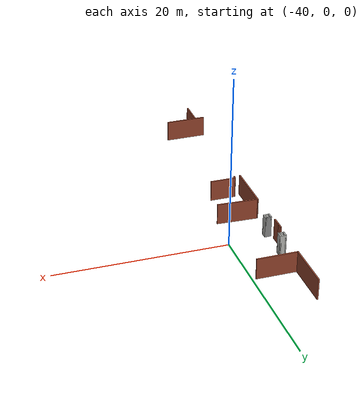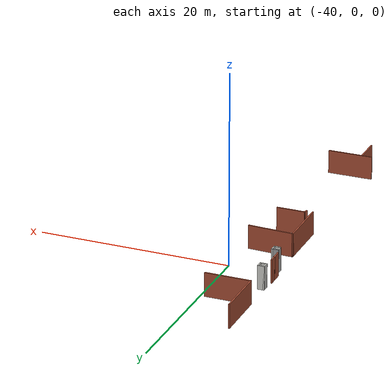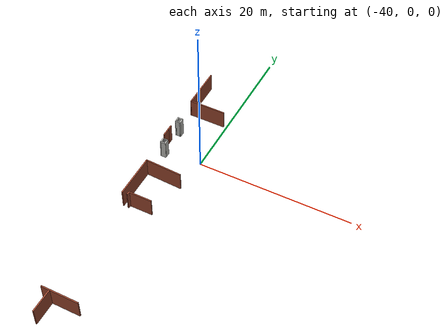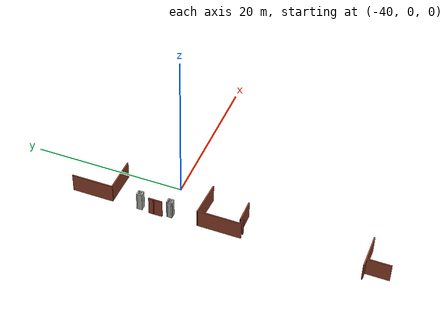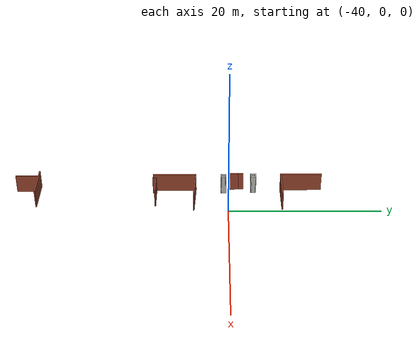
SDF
<sdf version="1.7">
 <model name="Planta1_TD">
  <pose>-6.73335 -7.75071 0 0 -0 0</pose>
  <link name="Wall_134">
   <collision name="Wall_134_Collision">
    <geometry><box><size>0.75 0.15 2.5</size></box></geometry>
    <pose>0 0 1.25 0 -0 0</pose>
   </collision>
   <visual name="Wall_134_Visual">
    <pose>0 0 1.25 0 -0 0</pose>
    <geometry><box><size>0.75 0.15 2.5</size></box></geometry>
    <material>
     <script><uri>file://media/materials/scripts/gazebo.material</uri><name>Gazebo/Bricks</name></script>
     <ambient>1 1 1 1</ambient>
    </material>
    <meta><layer>0</layer></meta>
   </visual>
   <pose>-38.4792 9.44018 0 0 -0 -1.5708</pose>
  </link>
  <link name="Wall_135">
   <collision name="Wall_135_Collision">
    <geometry><box><size>1.17617 0.15 2.5</size></box></geometry>
    <pose>0 0 1.25 0 -0 0</pose>
   </collision>
   <visual name="Wall_135_Visual">
    <pose>0 0 1.25 0 -0 0</pose>
    <geometry><box><size>1.17617 0.15 2.5</size></box></geometry>
    <material>
     <script><uri>file://media/materials/scripts/gazebo.material</uri><name>Gazebo/Bricks</name></script>
     <ambient>1 1 1 1</ambient>
    </material>
    <meta><layer>0</layer></meta>
   </visual>
   <pose>-38.4748 8.62711 0 0 -0 -1.56228</pose>
  </link>
  <link name="Wall_237">
   <collision name="Wall_237_Collision">
    <geometry><box><size>0.75 0.15 2.5</size></box></geometry>
    <pose>0 0 1.25 0 -0 0</pose>
   </collision>
   <visual name="Wall_237_Visual">
    <pose>0 0 1.25 0 -0 0</pose>
    <geometry><box><size>0.75 0.15 2.5</size></box></geometry>
    <material>
     <script><uri>file://media/materials/scripts/gazebo.material</uri><name>Gazebo/CeilingTiled</name></script>
     <ambient>1 1 1 1</ambient>
    </material>
    <meta><layer>0</layer></meta>
   </visual>
   <pose>-38.0519 11.4364 0 0 -0 3.14159</pose>
  </link>
  <link name="Wall_238">
   <collision name="Wall_238_Collision">
    <geometry><box><size>0.75 0.15 2.5</size></box></geometry>
    <pose>0 0 1.25 0 -0 0</pose>
   </collision>
   <visual name="Wall_238_Visual">
    <pose>0 0 1.25 0 -0 0</pose>
    <geometry><box><size>0.75 0.15 2.5</size></box></geometry>
    <material>
     <script><uri>file://media/materials/scripts/gazebo.material</uri><name>Gazebo/CeilingTiled</name></script>
     <ambient>1 1 1 1</ambient>
    </material>
    <meta><layer>0</layer></meta>
   </visual>
   <pose>-38.3519 11.1364 0 0 -0 -1.5708</pose>
  </link>
  <link name="Wall_239">
   <collision name="Wall_239_Collision">
    <geometry><box><size>0.75 0.15 2.5</size></box></geometry>
    <pose>0 0 1.25 0 -0 0</pose>
   </collision>
   <visual name="Wall_239_Visual">
    <pose>0 0 1.25 0 -0 0</pose>
    <geometry><box><size>0.75 0.15 2.5</size></box></geometry>
    <material>
     <script><uri>file://media/materials/scripts/gazebo.material</uri><name>Gazebo/CeilingTiled</name></script>
     <ambient>1 1 1 1</ambient>
    </material>
    <meta><layer>0</layer></meta>
   </visual>
   <pose>-38.0519 10.8364 0 0 -0 0</pose>
  </link>
  <link name="Wall_24">
   <collision name="Wall_24_Collision">
    <geometry><box><size>4.75 0.15 2.5</size></box></geometry>
    <pose>0 0 1.25 0 -0 0</pose>
   </collision>
   <visual name="Wall_24_Visual">
    <pose>0 0 1.25 0 -0 0</pose>
    <geometry><box><size>4.75 0.15 2.5</size></box></geometry>
    <material>
     <script><uri>file://media/materials/scripts/gazebo.material</uri><name>Gazebo/Bricks</name></script>
     <ambient>1 1 1 1</ambient>
    </material>
    <meta><layer>0</layer></meta>
   </visual>
   <pose>-36.7327 -17.4494 0 0 -0 3.14159</pose>
  </link>
  <link name="Wall_240">
   <collision name="Wall_240_Collision">
    <geometry><box><size>0.75 0.15 2.5</size></box></geometry>
    <pose>0 0 1.25 0 -0 0</pose>
   </collision>
   <visual name="Wall_240_Visual">
    <pose>0 0 1.25 0 -0 0</pose>
    <geometry><box><size>0.75 0.15 2.5</size></box></geometry>
    <material>
     <script><uri>file://media/materials/scripts/gazebo.material</uri><name>Gazebo/CeilingTiled</name></script>
     <ambient>1 1 1 1</ambient>
    </material>
    <meta><layer>0</layer></meta>
   </visual>
   <pose>-37.7519 11.1364 0 0 -0 1.5708</pose>
  </link>
  <link name="Wall_242">
   <collision name="Wall_242_Collision">
    <geometry><box><size>0.75 0.15 2.5</size></box></geometry>
    <pose>0 0 1.25 0 -0 0</pose>
   </collision>
   <visual name="Wall_242_Visual">
    <pose>0 0 1.25 0 -0 0</pose>
    <geometry><box><size>0.75 0.15 2.5</size></box></geometry>
    <material>
     <script><uri>file://media/materials/scripts/gazebo.material</uri><name>Gazebo/Grey</name></script>
     <ambient>1 1 1 1</ambient>
    </material>
    <meta><layer>0</layer></meta>
   </visual>
   <pose>-37.9409 7.46814 0 0 -0 0</pose>
  </link>
  <link name="Wall_243">
   <collision name="Wall_243_Collision">
    <geometry><box><size>0.75 0.15 2.5</size></box></geometry>
    <pose>0 0 1.25 0 -0 0</pose>
   </collision>
   <visual name="Wall_243_Visual">
    <pose>0 0 1.25 0 -0 0</pose>
    <geometry><box><size>0.75 0.15 2.5</size></box></geometry>
    <material>
     <script><uri>file://media/materials/scripts/gazebo.material</uri><name>Gazebo/CeilingTiled</name></script>
     <ambient>1 1 1 1</ambient>
    </material>
    <meta><layer>0</layer></meta>
   </visual>
   <pose>-37.6409 7.16814 0 0 -0 -1.5708</pose>
  </link>
  <link name="Wall_244">
   <collision name="Wall_244_Collision">
    <geometry><box><size>0.75 0.15 2.5</size></box></geometry>
    <pose>0 0 1.25 0 -0 0</pose>
   </collision>
   <visual name="Wall_244_Visual">
    <pose>0 0 1.25 0 -0 0</pose>
    <geometry><box><size>0.75 0.15 2.5</size></box></geometry>
    <material>
     <script><uri>file://media/materials/scripts/gazebo.material</uri><name>Gazebo/CeilingTiled</name></script>
     <ambient>1 1 1 1</ambient>
    </material>
    <meta><layer>0</layer></meta>
   </visual>
   <pose>-37.9409 6.86814 0 0 -0 3.14159</pose>
  </link>
  <link name="Wall_245">
   <collision name="Wall_245_Collision">
    <geometry><box><size>0.75 0.15 2.5</size></box></geometry>
    <pose>0 0 1.25 0 -0 0</pose>
   </collision>
   <visual name="Wall_245_Visual">
    <pose>0 0 1.25 0 -0 0</pose>
    <geometry><box><size>0.75 0.15 2.5</size></box></geometry>
    <material>
     <script><uri>file://media/materials/scripts/gazebo.material</uri><name>Gazebo/CeilingTiled</name></script>
     <ambient>1 1 1 1</ambient>
    </material>
    <meta><layer>0</layer></meta>
   </visual>
   <pose>-38.2409 7.16814 0 0 -0 1.5708</pose>
  </link>
  <link name="Wall_4">
   <collision name="Wall_4_Collision">
    <geometry><box><size>0.5 0.15 2.5</size></box></geometry>
    <pose>0 0 1.25 0 -0 0</pose>
   </collision>
   <visual name="Wall_4_Visual">
    <pose>0 0 1.25 0 -0 0</pose>
    <geometry><box><size>0.5 0.15 2.5</size></box></geometry>
    <material>
     <script><uri>file://media/materials/scripts/gazebo.material</uri><name>Gazebo/Bricks</name></script>
     <ambient>1 1 1 1</ambient>
    </material>
    <meta><layer>0</layer></meta>
   </visual>
   <pose>-37.5173 -1.98699 0 0 -0 1.309</pose>
  </link>
  <link name="Wall_42">
   <collision name="Wall_42_Collision">
    <geometry><box><size>3 0.15 2.5</size></box></geometry>
    <pose>0 0 1.25 0 -0 0</pose>
   </collision>
   <visual name="Wall_42_Visual">
    <pose>0 0 1.25 0 -0 0</pose>
    <geometry><box><size>3 0.15 2.5</size></box></geometry>
    <material>
     <script><uri>file://media/materials/scripts/gazebo.material</uri><name>Gazebo/Bricks</name></script>
     <ambient>1 1 1 1</ambient>
    </material>
    <meta><layer>0</layer></meta>
   </visual>
   <pose>-37.9984 -19.0014 0 0 -0 1.5708</pose>
  </link>
  <link name="Wall_5">
   <collision name="Wall_5_Collision">
    <geometry><box><size>3 0.15 2.5</size></box></geometry>
    <pose>0 0 1.25 0 -0 0</pose>
   </collision>
   <visual name="Wall_5_Visual">
    <pose>0 0 1.25 0 -0 0</pose>
    <geometry><box><size>3 0.15 2.5</size></box></geometry>
    <material>
     <script><uri>file://media/materials/scripts/gazebo.material</uri><name>Gazebo/Bricks</name></script>
     <ambient>1 1 1 1</ambient>
    </material>
    <meta><layer>0</layer></meta>
   </visual>
   <pose>-36.047 -1.81795 0 0 -0 0</pose>
  </link>
  <link name="Wall_69">
   <collision name="Wall_69_Collision">
    <geometry><box><size>4.80736 0.15 2.5</size></box></geometry>
    <pose>0 0 1.25 0 -0 0</pose>
   </collision>
   <visual name="Wall_69_Visual">
    <pose>0 0 1.25 0 -0 0</pose>
    <geometry><box><size>4.80736 0.15 2.5</size></box></geometry>
    <material>
     <script><uri>file://media/materials/scripts/gazebo.material</uri><name>Gazebo/Bricks</name></script>
     <ambient>1 1 1 1</ambient>
    </material>
    <meta><layer>0</layer></meta>
   </visual>
   <pose>-35.9114 3.35753 0 0 -0 3.0964</pose>
  </link>
  <link name="Wall_70">
   <collision name="Wall_70_Collision">
    <geometry><box><size>5.75 0.15 2.5</size></box></geometry>
    <pose>0 0 1.25 0 -0 0</pose>
   </collision>
   <visual name="Wall_70_Visual">
    <pose>0 0 1.25 0 -0 0</pose>
    <geometry><box><size>5.75 0.15 2.5</size></box></geometry>
    <material>
     <script><uri>file://media/materials/scripts/gazebo.material</uri><name>Gazebo/Bricks</name></script>
     <ambient>1 1 1 1</ambient>
    </material>
    <meta><layer>0</layer></meta>
   </visual>
   <pose>-38.2377 0.662732 0 0 -0 -1.5708</pose>
  </link>
  <link name="Wall_93">
   <collision name="Wall_93_Collision">
    <geometry><box><size>5.5 0.15 2.5</size></box></geometry>
    <pose>0 0 1.25 0 -0 0</pose>
   </collision>
   <visual name="Wall_93_Visual">
    <pose>0 0 1.25 0 -0 0</pose>
    <geometry><box><size>5.5 0.15 2.5</size></box></geometry>
    <material>
     <script><uri>file://media/materials/scripts/gazebo.material</uri><name>Gazebo/Bricks</name></script>
     <ambient>1 1 1 1</ambient>
    </material>
    <meta><layer>0</layer></meta>
   </visual>
   <pose>-38.3397 17.5116 0 0 -0 -1.5708</pose>
  </link>
  <link name="Wall_95">
   <collision name="Wall_95_Collision">
    <geometry><box><size>4.75 0.15 2.5</size></box></geometry>
    <pose>0 0 1.25 0 -0 0</pose>
   </collision>
   <visual name="Wall_95_Visual">
    <pose>0 0 1.25 0 -0 0</pose>
    <geometry><box><size>4.75 0.15 2.5</size></box></geometry>
    <material>
     <script><uri>file://media/materials/scripts/gazebo.material</uri><name>Gazebo/Bricks</name></script>
     <ambient>1 1 1 1</ambient>
    </material>
    <meta><layer>0</layer></meta>
   </visual>
   <pose>-36.0397 14.8366 0 0 -0 0</pose>
  </link>
  <static>1</static>
 </model>
</sdf>
